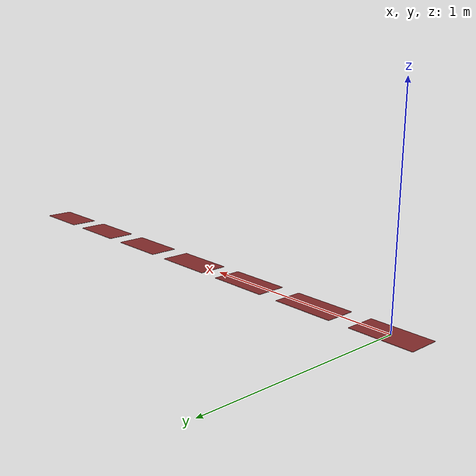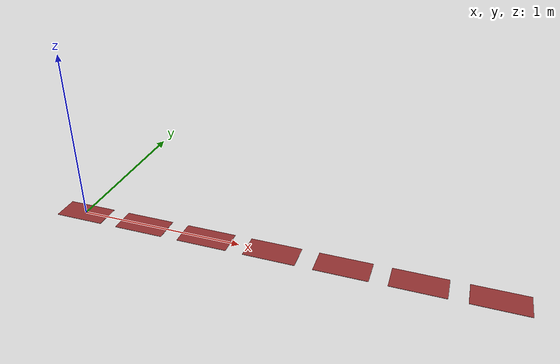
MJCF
<mujoco model="lane">
  <asset>
    <material name="MatPaint" rgba="0.6 0.2 0.2 1" />
  </asset>

  <worldbody>
    <body>
      <body name="object">
        <inertial pos="0 0 0.0005" mass="1." diaginertia="0.4 0.4 0.1"/>
        <site name="origin" pos="0 0 0" rgba="0 0 0 0" size="0.005"/>
        <geom
          pos="0 0 0.001" size="0.15 0.075 0.001" type="box"
          group="1" contype="0" conaffinity="0"
          material="MatPaint"
          />
        <geom
          pos="0.4 0 0.001" size="0.15 0.075 0.001" type="box"
          group="1" contype="0" conaffinity="0"
          material="MatPaint"
          />
        <geom
          pos="0.8 0 0.001" size="0.15 0.075 0.001" type="box"
          group="1" contype="0" conaffinity="0"
          material="MatPaint"
          />
        <geom
          pos="1.2 0 0.001" size="0.15 0.075 0.001" type="box"
          group="1" contype="0" conaffinity="0"
          material="MatPaint"
          />
        <geom
          pos="1.6 0 0.001" size="0.15 0.075 0.001" type="box"
          group="1" contype="0" conaffinity="0"
          material="MatPaint"
          />
        <geom
          pos="2.0 0 0.001" size="0.15 0.075 0.001" type="box"
          group="1" contype="0" conaffinity="0"
          material="MatPaint"
          />
        <geom
          pos="2.4 0 0.001" size="0.15 0.075 0.001" type="box"
          group="1" contype="0" conaffinity="0"
          material="MatPaint"
          />

      </body>
      <site name="bottom_site" pos="0 0 -0.0207" rgba="0 0 0 0" size="0.005"/>
      <site name="top_site" pos="0 0 0.007" rgba="0 0 0 0" size="0.005"/>
      <site name="horizontal_radius_site" pos="0 0 0" rgba="0 0 0 0" size="0.003"/>
    </body>

  </worldbody>
</mujoco>
